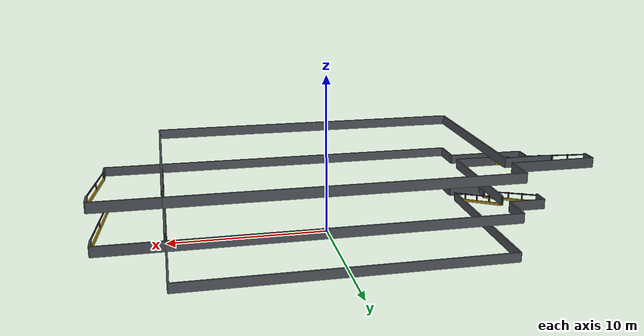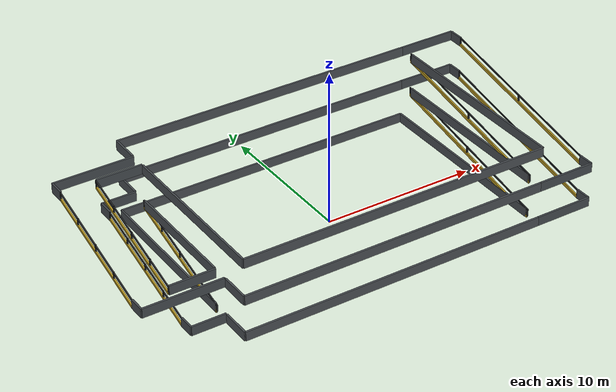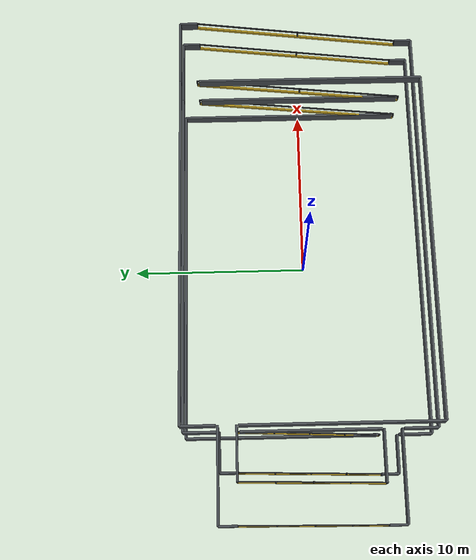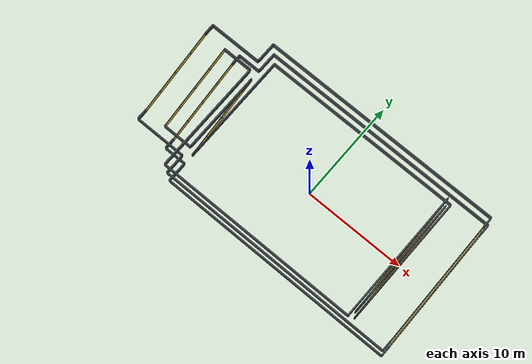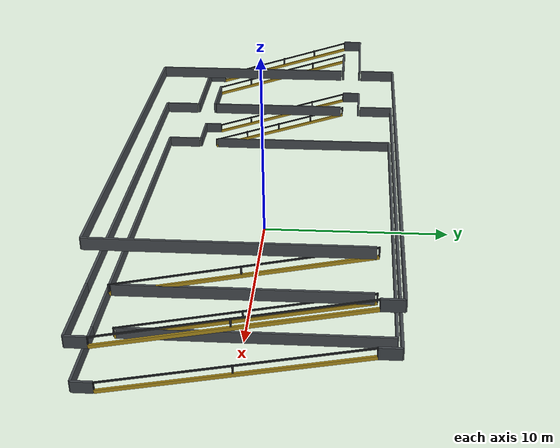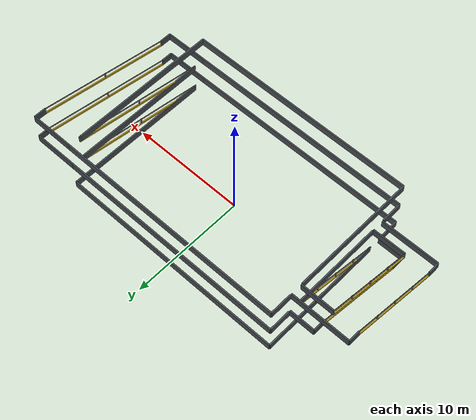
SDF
<sdf version="1.7">
 <world name="three_level_parking_garage">
  <model name="three_level_parking_structure">
   <static>true</static>
   <link name="safety_guards">
    <collision name="l1_north_guard_collision">
     <pose>0 7.0 0.30 0 0 0</pose>
     <geometry><box><size>20.0 0.12 0.60</size></box></geometry>
    </collision>
    <visual name="l1_north_guard_visual">
     <pose>0 7.0 0.30 0 0 0</pose>
     <geometry><box><size>20.0 0.12 0.60</size></box></geometry>
     <material><ambient>0.22 0.24 0.26 1</ambient><diffuse>0.29 0.31 0.33 1</diffuse></material>
    </visual>
    <collision name="l1_south_guard_collision">
     <pose>0 -7.0 0.30 0 0 0</pose>
     <geometry><box><size>20.0 0.12 0.60</size></box></geometry>
    </collision>
    <visual name="l1_south_guard_visual">
     <pose>0 -7.0 0.30 0 0 0</pose>
     <geometry><box><size>20.0 0.12 0.60</size></box></geometry>
     <material><ambient>0.22 0.24 0.26 1</ambient><diffuse>0.29 0.31 0.33 1</diffuse></material>
    </visual>
    <collision name="l2_north_guard_collision">
     <pose>0 7.0 2.70 0 0 0</pose>
     <geometry><box><size>20.0 0.12 0.60</size></box></geometry>
    </collision>
    <visual name="l2_north_guard_visual">
     <pose>0 7.0 2.70 0 0 0</pose>
     <geometry><box><size>20.0 0.12 0.60</size></box></geometry>
     <material><ambient>0.22 0.24 0.26 1</ambient><diffuse>0.29 0.31 0.33 1</diffuse></material>
    </visual>
    <collision name="l2_south_guard_collision">
     <pose>0 -7.0 2.70 0 0 0</pose>
     <geometry><box><size>20.0 0.12 0.60</size></box></geometry>
    </collision>
    <visual name="l2_south_guard_visual">
     <pose>0 -7.0 2.70 0 0 0</pose>
     <geometry><box><size>20.0 0.12 0.60</size></box></geometry>
     <material><ambient>0.22 0.24 0.26 1</ambient><diffuse>0.29 0.31 0.33 1</diffuse></material>
    </visual>
    <collision name="l3_north_guard_collision">
     <pose>0 7.0 5.10 0 0 0</pose>
     <geometry><box><size>20.0 0.12 0.60</size></box></geometry>
    </collision>
    <visual name="l3_north_guard_visual">
     <pose>0 7.0 5.10 0 0 0</pose>
     <geometry><box><size>20.0 0.12 0.60</size></box></geometry>
     <material><ambient>0.22 0.24 0.26 1</ambient><diffuse>0.29 0.31 0.33 1</diffuse></material>
    </visual>
    <collision name="l3_south_guard_collision">
     <pose>0 -7.0 5.10 0 0 0</pose>
     <geometry><box><size>20.0 0.12 0.60</size></box></geometry>
    </collision>
    <visual name="l3_south_guard_visual">
     <pose>0 -7.0 5.10 0 0 0</pose>
     <geometry><box><size>20.0 0.12 0.60</size></box></geometry>
     <material><ambient>0.22 0.24 0.26 1</ambient><diffuse>0.29 0.31 0.33 1</diffuse></material>
    </visual>
    <collision name="l1_east_guard_2_collision">
     <pose>10.0 0.55 0.30 0 0 0</pose>
     <geometry><box><size>0.12 12.9 0.60</size></box></geometry>
    </collision>
    <visual name="l1_east_guard_2_visual">
     <pose>10.0 0.55 0.30 0 0 0</pose>
     <geometry><box><size>0.12 12.9 0.60</size></box></geometry>
     <material><ambient>0.22 0.24 0.26 1</ambient><diffuse>0.29 0.31 0.33 1</diffuse></material>
    </visual>
    <collision name="l1_west_guard_1_collision">
     <pose>-10.0 -6.05 0.30 0 0 0</pose>
     <geometry><box><size>0.12 1.9 0.60</size></box></geometry>
    </collision>
    <visual name="l1_west_guard_1_visual">
     <pose>-10.0 -6.05 0.30 0 0 0</pose>
     <geometry><box><size>0.12 1.9 0.60</size></box></geometry>
     <material><ambient>0.22 0.24 0.26 1</ambient><diffuse>0.29 0.31 0.33 1</diffuse></material>
    </visual>
    <collision name="l1_west_guard_2_collision">
     <pose>-10.0 1.55 0.30 0 0 0</pose>
     <geometry><box><size>0.12 10.9 0.60</size></box></geometry>
    </collision>
    <visual name="l1_west_guard_2_visual">
     <pose>-10.0 1.55 0.30 0 0 0</pose>
     <geometry><box><size>0.12 10.9 0.60</size></box></geometry>
     <material><ambient>0.22 0.24 0.26 1</ambient><diffuse>0.29 0.31 0.33 1</diffuse></material>
    </visual>
    <collision name="l2_east_guard_2_collision">
     <pose>10.0 0 2.70 0 0 0</pose>
     <geometry><box><size>0.12 11.8 0.60</size></box></geometry>
    </collision>
    <visual name="l2_east_guard_2_visual">
     <pose>10.0 0 2.70 0 0 0</pose>
     <geometry><box><size>0.12 11.8 0.60</size></box></geometry>
     <material><ambient>0.22 0.24 0.26 1</ambient><diffuse>0.29 0.31 0.33 1</diffuse></material>
    </visual>
    <collision name="l2_west_guard_1_collision">
     <pose>-10.0 -6.05 2.70 0 0 0</pose>
     <geometry><box><size>0.12 1.9 0.60</size></box></geometry>
    </collision>
    <visual name="l2_west_guard_1_visual">
     <pose>-10.0 -6.05 2.70 0 0 0</pose>
     <geometry><box><size>0.12 1.9 0.60</size></box></geometry>
     <material><ambient>0.22 0.24 0.26 1</ambient><diffuse>0.29 0.31 0.33 1</diffuse></material>
    </visual>
    <collision name="l2_west_guard_2_collision">
     <pose>-10.0 0 2.70 0 0 0</pose>
     <geometry><box><size>0.12 7.8 0.60</size></box></geometry>
    </collision>
    <visual name="l2_west_guard_2_visual">
     <pose>-10.0 0 2.70 0 0 0</pose>
     <geometry><box><size>0.12 7.8 0.60</size></box></geometry>
     <material><ambient>0.22 0.24 0.26 1</ambient><diffuse>0.29 0.31 0.33 1</diffuse></material>
    </visual>
    <collision name="l2_west_guard_3_collision">
     <pose>-10.0 6.05 2.70 0 0 0</pose>
     <geometry><box><size>0.12 1.9 0.60</size></box></geometry>
    </collision>
    <visual name="l2_west_guard_3_visual">
     <pose>-10.0 6.05 2.70 0 0 0</pose>
     <geometry><box><size>0.12 1.9 0.60</size></box></geometry>
     <material><ambient>0.22 0.24 0.26 1</ambient><diffuse>0.29 0.31 0.33 1</diffuse></material>
    </visual>
    <collision name="l3_east_guard_1_collision">
     <pose>10.0 -0.55 5.10 0 0 0</pose>
     <geometry><box><size>0.12 12.9 0.60</size></box></geometry>
    </collision>
    <visual name="l3_east_guard_1_visual">
     <pose>10.0 -0.55 5.10 0 0 0</pose>
     <geometry><box><size>0.12 12.9 0.60</size></box></geometry>
     <material><ambient>0.22 0.24 0.26 1</ambient><diffuse>0.29 0.31 0.33 1</diffuse></material>
    </visual>
    <collision name="l3_west_guard_1_collision">
     <pose>-10.0 -1.55 5.10 0 0 0</pose>
     <geometry><box><size>0.12 10.9 0.60</size></box></geometry>
    </collision>
    <visual name="l3_west_guard_1_visual">
     <pose>-10.0 -1.55 5.10 0 0 0</pose>
     <geometry><box><size>0.12 10.9 0.60</size></box></geometry>
     <material><ambient>0.22 0.24 0.26 1</ambient><diffuse>0.29 0.31 0.33 1</diffuse></material>
    </visual>
    <collision name="l3_west_guard_2_collision">
     <pose>-10.0 6.05 5.10 0 0 0</pose>
     <geometry><box><size>0.12 1.9 0.60</size></box></geometry>
    </collision>
    <visual name="l3_west_guard_2_visual">
     <pose>-10.0 6.05 5.10 0 0 0</pose>
     <geometry><box><size>0.12 1.9 0.60</size></box></geometry>
     <material><ambient>0.22 0.24 0.26 1</ambient><diffuse>0.29 0.31 0.33 1</diffuse></material>
    </visual>
    <collision name="ramp_12_inner_curb_collision">
     <pose>10 0 1.28 0 -0.197396 1.570796</pose>
     <geometry><box><size>12.237648 0.10 0.18</size></box></geometry>
    </collision>
    <visual name="ramp_12_inner_curb_visual">
     <pose>10 0 1.28 0 -0.197396 1.570796</pose>
     <geometry><box><size>12.237648 0.10 0.18</size></box></geometry>
     <material><ambient>0.52 0.43 0.09 1</ambient><diffuse>0.72 0.59 0.12 1</diffuse></material>
    </visual>
    <collision name="ramp_12_inner_rail_collision">
     <pose>10 0 1.75 0 -0.197396 1.570796</pose>
     <geometry><box><size>12.237648 0.07 0.07</size></box></geometry>
    </collision>
    <visual name="ramp_12_inner_rail_visual">
     <pose>10 0 1.75 0 -0.197396 1.570796</pose>
     <geometry><box><size>12.237648 0.07 0.07</size></box></geometry>
     <material><ambient>0.10 0.11 0.12 1</ambient><diffuse>0.16 0.17 0.18 1</diffuse></material>
    </visual>
    <collision name="ramp_12_inner_post_1_collision">
     <pose>10 -6 0.34 0 0 0</pose>
     <geometry><box><size>0.08 0.08 0.50</size></box></geometry>
    </collision>
    <visual name="ramp_12_inner_post_1_visual">
     <pose>10 -6 0.34 0 0 0</pose>
     <geometry><box><size>0.08 0.08 0.50</size></box></geometry>
     <material><ambient>0.10 0.11 0.12 1</ambient><diffuse>0.16 0.17 0.18 1</diffuse></material>
    </visual>
    <collision name="ramp_12_inner_post_2_collision">
     <pose>10 0 1.54 0 0 0</pose>
     <geometry><box><size>0.08 0.08 0.50</size></box></geometry>
    </collision>
    <visual name="ramp_12_inner_post_2_visual">
     <pose>10 0 1.54 0 0 0</pose>
     <geometry><box><size>0.08 0.08 0.50</size></box></geometry>
     <material><ambient>0.10 0.11 0.12 1</ambient><diffuse>0.16 0.17 0.18 1</diffuse></material>
    </visual>
    <collision name="ramp_12_inner_post_3_collision">
     <pose>10 6 2.74 0 0 0</pose>
     <geometry><box><size>0.08 0.08 0.50</size></box></geometry>
    </collision>
    <visual name="ramp_12_inner_post_3_visual">
     <pose>10 6 2.74 0 0 0</pose>
     <geometry><box><size>0.08 0.08 0.50</size></box></geometry>
     <material><ambient>0.10 0.11 0.12 1</ambient><diffuse>0.16 0.17 0.18 1</diffuse></material>
    </visual>
    <collision name="ramp_12_outer_curb_collision">
     <pose>13.8 0 1.28 0 -0.197396 1.570796</pose>
     <geometry><box><size>12.237648 0.10 0.18</size></box></geometry>
    </collision>
    <visual name="ramp_12_outer_curb_visual">
     <pose>13.8 0 1.28 0 -0.197396 1.570796</pose>
     <geometry><box><size>12.237648 0.10 0.18</size></box></geometry>
     <material><ambient>0.52 0.43 0.09 1</ambient><diffuse>0.72 0.59 0.12 1</diffuse></material>
    </visual>
    <collision name="ramp_12_outer_rail_collision">
     <pose>13.8 0 1.75 0 -0.197396 1.570796</pose>
     <geometry><box><size>12.237648 0.07 0.07</size></box></geometry>
    </collision>
    <visual name="ramp_12_outer_rail_visual">
     <pose>13.8 0 1.75 0 -0.197396 1.570796</pose>
     <geometry><box><size>12.237648 0.07 0.07</size></box></geometry>
     <material><ambient>0.10 0.11 0.12 1</ambient><diffuse>0.16 0.17 0.18 1</diffuse></material>
    </visual>
    <collision name="ramp_12_outer_post_1_collision">
     <pose>13.8 -6 0.34 0 0 0</pose>
     <geometry><box><size>0.08 0.08 0.50</size></box></geometry>
    </collision>
    <visual name="ramp_12_outer_post_1_visual">
     <pose>13.8 -6 0.34 0 0 0</pose>
     <geometry><box><size>0.08 0.08 0.50</size></box></geometry>
     <material><ambient>0.10 0.11 0.12 1</ambient><diffuse>0.16 0.17 0.18 1</diffuse></material>
    </visual>
    <collision name="ramp_12_outer_post_2_collision">
     <pose>13.8 0 1.54 0 0 0</pose>
     <geometry><box><size>0.08 0.08 0.50</size></box></geometry>
    </collision>
    <visual name="ramp_12_outer_post_2_visual">
     <pose>13.8 0 1.54 0 0 0</pose>
     <geometry><box><size>0.08 0.08 0.50</size></box></geometry>
     <material><ambient>0.10 0.11 0.12 1</ambient><diffuse>0.16 0.17 0.18 1</diffuse></material>
    </visual>
    <collision name="ramp_12_outer_post_3_collision">
     <pose>13.8 6 2.74 0 0 0</pose>
     <geometry><box><size>0.08 0.08 0.50</size></box></geometry>
    </collision>
    <visual name="ramp_12_outer_post_3_visual">
     <pose>13.8 6 2.74 0 0 0</pose>
     <geometry><box><size>0.08 0.08 0.50</size></box></geometry>
     <material><ambient>0.10 0.11 0.12 1</ambient><diffuse>0.16 0.17 0.18 1</diffuse></material>
    </visual>
    <collision name="ramp_23_inner_curb_collision">
     <pose>10 0 3.68 0 -0.197396 1.570796</pose>
     <geometry><box><size>12.237648 0.10 0.18</size></box></geometry>
    </collision>
    <visual name="ramp_23_inner_curb_visual">
     <pose>10 0 3.68 0 -0.197396 1.570796</pose>
     <geometry><box><size>12.237648 0.10 0.18</size></box></geometry>
     <material><ambient>0.52 0.43 0.09 1</ambient><diffuse>0.72 0.59 0.12 1</diffuse></material>
    </visual>
    <collision name="ramp_23_inner_rail_collision">
     <pose>10 0 4.15 0 -0.197396 1.570796</pose>
     <geometry><box><size>12.237648 0.07 0.07</size></box></geometry>
    </collision>
    <visual name="ramp_23_inner_rail_visual">
     <pose>10 0 4.15 0 -0.197396 1.570796</pose>
     <geometry><box><size>12.237648 0.07 0.07</size></box></geometry>
     <material><ambient>0.10 0.11 0.12 1</ambient><diffuse>0.16 0.17 0.18 1</diffuse></material>
    </visual>
    <collision name="ramp_23_inner_post_1_collision">
     <pose>10 -6 2.74 0 0 0</pose>
     <geometry><box><size>0.08 0.08 0.50</size></box></geometry>
    </collision>
    <visual name="ramp_23_inner_post_1_visual">
     <pose>10 -6 2.74 0 0 0</pose>
     <geometry><box><size>0.08 0.08 0.50</size></box></geometry>
     <material><ambient>0.10 0.11 0.12 1</ambient><diffuse>0.16 0.17 0.18 1</diffuse></material>
    </visual>
    <collision name="ramp_23_inner_post_2_collision">
     <pose>10 0 3.94 0 0 0</pose>
     <geometry><box><size>0.08 0.08 0.50</size></box></geometry>
    </collision>
    <visual name="ramp_23_inner_post_2_visual">
     <pose>10 0 3.94 0 0 0</pose>
     <geometry><box><size>0.08 0.08 0.50</size></box></geometry>
     <material><ambient>0.10 0.11 0.12 1</ambient><diffuse>0.16 0.17 0.18 1</diffuse></material>
    </visual>
    <collision name="ramp_23_inner_post_3_collision">
     <pose>10 6 5.14 0 0 0</pose>
     <geometry><box><size>0.08 0.08 0.50</size></box></geometry>
    </collision>
    <visual name="ramp_23_inner_post_3_visual">
     <pose>10 6 5.14 0 0 0</pose>
     <geometry><box><size>0.08 0.08 0.50</size></box></geometry>
     <material><ambient>0.10 0.11 0.12 1</ambient><diffuse>0.16 0.17 0.18 1</diffuse></material>
    </visual>
    <collision name="ramp_23_outer_curb_collision">
     <pose>13.8 0 3.68 0 -0.197396 1.570796</pose>
     <geometry><box><size>12.237648 0.10 0.18</size></box></geometry>
    </collision>
    <visual name="ramp_23_outer_curb_visual">
     <pose>13.8 0 3.68 0 -0.197396 1.570796</pose>
     <geometry><box><size>12.237648 0.10 0.18</size></box></geometry>
     <material><ambient>0.52 0.43 0.09 1</ambient><diffuse>0.72 0.59 0.12 1</diffuse></material>
    </visual>
    <collision name="ramp_23_outer_rail_collision">
     <pose>13.8 0 4.15 0 -0.197396 1.570796</pose>
     <geometry><box><size>12.237648 0.07 0.07</size></box></geometry>
    </collision>
    <visual name="ramp_23_outer_rail_visual">
     <pose>13.8 0 4.15 0 -0.197396 1.570796</pose>
     <geometry><box><size>12.237648 0.07 0.07</size></box></geometry>
     <material><ambient>0.10 0.11 0.12 1</ambient><diffuse>0.16 0.17 0.18 1</diffuse></material>
    </visual>
    <collision name="ramp_23_outer_post_1_collision">
     <pose>13.8 -6 2.74 0 0 0</pose>
     <geometry><box><size>0.08 0.08 0.50</size></box></geometry>
    </collision>
    <visual name="ramp_23_outer_post_1_visual">
     <pose>13.8 -6 2.74 0 0 0</pose>
     <geometry><box><size>0.08 0.08 0.50</size></box></geometry>
     <material><ambient>0.10 0.11 0.12 1</ambient><diffuse>0.16 0.17 0.18 1</diffuse></material>
    </visual>
    <collision name="ramp_23_outer_post_2_collision">
     <pose>13.8 0 3.94 0 0 0</pose>
     <geometry><box><size>0.08 0.08 0.50</size></box></geometry>
    </collision>
    <visual name="ramp_23_outer_post_2_visual">
     <pose>13.8 0 3.94 0 0 0</pose>
     <geometry><box><size>0.08 0.08 0.50</size></box></geometry>
     <material><ambient>0.10 0.11 0.12 1</ambient><diffuse>0.16 0.17 0.18 1</diffuse></material>
    </visual>
    <collision name="ramp_23_outer_post_3_collision">
     <pose>13.8 6 5.14 0 0 0</pose>
     <geometry><box><size>0.08 0.08 0.50</size></box></geometry>
    </collision>
    <visual name="ramp_23_outer_post_3_visual">
     <pose>13.8 6 5.14 0 0 0</pose>
     <geometry><box><size>0.08 0.08 0.50</size></box></geometry>
     <material><ambient>0.10 0.11 0.12 1</ambient><diffuse>0.16 0.17 0.18 1</diffuse></material>
    </visual>
    <collision name="stair_12_outer_curb_collision">
     <pose>-12.2 0 1.27 0 -0.291457 1.570796</pose>
     <geometry><box><size>8.352245 0.10 0.16</size></box></geometry>
    </collision>
    <visual name="stair_12_outer_curb_visual">
     <pose>-12.2 0 1.27 0 -0.291457 1.570796</pose>
     <geometry><box><size>8.352245 0.10 0.16</size></box></geometry>
     <material><ambient>0.52 0.43 0.09 1</ambient><diffuse>0.72 0.59 0.12 1</diffuse></material>
    </visual>
    <collision name="stair_12_outer_rail_collision">
     <pose>-12.2 0 1.70 0 -0.291457 1.570796</pose>
     <geometry><box><size>8.352245 0.07 0.07</size></box></geometry>
    </collision>
    <visual name="stair_12_outer_rail_visual">
     <pose>-12.2 0 1.70 0 -0.291457 1.570796</pose>
     <geometry><box><size>8.352245 0.07 0.07</size></box></geometry>
     <material><ambient>0.10 0.11 0.12 1</ambient><diffuse>0.16 0.17 0.18 1</diffuse></material>
    </visual>
    <collision name="stair_12_outer_post_1_collision">
     <pose>-12.2 -4 0.32 0 0 0</pose>
     <geometry><box><size>0.08 0.08 0.48</size></box></geometry>
    </collision>
    <visual name="stair_12_outer_post_1_visual">
     <pose>-12.2 -4 0.32 0 0 0</pose>
     <geometry><box><size>0.08 0.08 0.48</size></box></geometry>
     <material><ambient>0.10 0.11 0.12 1</ambient><diffuse>0.16 0.17 0.18 1</diffuse></material>
    </visual>
    <collision name="stair_12_outer_post_2_collision">
     <pose>-12.2 -2 0.92 0 0 0</pose>
     <geometry><box><size>0.08 0.08 0.48</size></box></geometry>
    </collision>
    <visual name="stair_12_outer_post_2_visual">
     <pose>-12.2 -2 0.92 0 0 0</pose>
     <geometry><box><size>0.08 0.08 0.48</size></box></geometry>
     <material><ambient>0.10 0.11 0.12 1</ambient><diffuse>0.16 0.17 0.18 1</diffuse></material>
    </visual>
    <collision name="stair_12_outer_post_3_collision">
     <pose>-12.2 0 1.52 0 0 0</pose>
     <geometry><box><size>0.08 0.08 0.48</size></box></geometry>
    </collision>
    <visual name="stair_12_outer_post_3_visual">
     <pose>-12.2 0 1.52 0 0 0</pose>
     <geometry><box><size>0.08 0.08 0.48</size></box></geometry>
     <material><ambient>0.10 0.11 0.12 1</ambient><diffuse>0.16 0.17 0.18 1</diffuse></material>
    </visual>
    <collision name="stair_12_outer_post_4_collision">
     <pose>-12.2 2 2.12 0 0 0</pose>
     <geometry><box><size>0.08 0.08 0.48</size></box></geometry>
    </collision>
    <visual name="stair_12_outer_post_4_visual">
     <pose>-12.2 2 2.12 0 0 0</pose>
     <geometry><box><size>0.08 0.08 0.48</size></box></geometry>
     <material><ambient>0.10 0.11 0.12 1</ambient><diffuse>0.16 0.17 0.18 1</diffuse></material>
    </visual>
    <collision name="stair_12_outer_post_5_collision">
     <pose>-12.2 4 2.72 0 0 0</pose>
     <geometry><box><size>0.08 0.08 0.48</size></box></geometry>
    </collision>
    <visual name="stair_12_outer_post_5_visual">
     <pose>-12.2 4 2.72 0 0 0</pose>
     <geometry><box><size>0.08 0.08 0.48</size></box></geometry>
     <material><ambient>0.10 0.11 0.12 1</ambient><diffuse>0.16 0.17 0.18 1</diffuse></material>
    </visual>
    <collision name="stair_12_inner_curb_collision">
     <pose>-10 0 1.27 0 -0.291457 1.570796</pose>
     <geometry><box><size>8.352245 0.10 0.16</size></box></geometry>
    </collision>
    <visual name="stair_12_inner_curb_visual">
     <pose>-10 0 1.27 0 -0.291457 1.570796</pose>
     <geometry><box><size>8.352245 0.10 0.16</size></box></geometry>
     <material><ambient>0.52 0.43 0.09 1</ambient><diffuse>0.72 0.59 0.12 1</diffuse></material>
    </visual>
    <collision name="stair_12_inner_rail_collision">
     <pose>-10 0 1.70 0 -0.291457 1.570796</pose>
     <geometry><box><size>8.352245 0.07 0.07</size></box></geometry>
    </collision>
    <visual name="stair_12_inner_rail_visual">
     <pose>-10 0 1.70 0 -0.291457 1.570796</pose>
     <geometry><box><size>8.352245 0.07 0.07</size></box></geometry>
     <material><ambient>0.10 0.11 0.12 1</ambient><diffuse>0.16 0.17 0.18 1</diffuse></material>
    </visual>
    <collision name="stair_12_inner_post_1_collision">
     <pose>-10 -4 0.32 0 0 0</pose>
     <geometry><box><size>0.08 0.08 0.48</size></box></geometry>
    </collision>
    <visual name="stair_12_inner_post_1_visual">
     <pose>-10 -4 0.32 0 0 0</pose>
     <geometry><box><size>0.08 0.08 0.48</size></box></geometry>
     <material><ambient>0.10 0.11 0.12 1</ambient><diffuse>0.16 0.17 0.18 1</diffuse></material>
    </visual>
    <collision name="stair_12_inner_post_2_collision">
     <pose>-10 -2 0.92 0 0 0</pose>
     <geometry><box><size>0.08 0.08 0.48</size></box></geometry>
    </collision>
    <visual name="stair_12_inner_post_2_visual">
     <pose>-10 -2 0.92 0 0 0</pose>
     <geometry><box><size>0.08 0.08 0.48</size></box></geometry>
     <material><ambient>0.10 0.11 0.12 1</ambient><diffuse>0.16 0.17 0.18 1</diffuse></material>
    </visual>
    <collision name="stair_12_inner_post_3_collision">
     <pose>-10 0 1.52 0 0 0</pose>
     <geometry><box><size>0.08 0.08 0.48</size></box></geometry>
    </collision>
    <visual name="stair_12_inner_post_3_visual">
     <pose>-10 0 1.52 0 0 0</pose>
     <geometry><box><size>0.08 0.08 0.48</size></box></geometry>
     <material><ambient>0.10 0.11 0.12 1</ambient><diffuse>0.16 0.17 0.18 1</diffuse></material>
    </visual>
    <collision name="stair_12_inner_post_4_collision">
     <pose>-10 2 2.12 0 0 0</pose>
     <geometry><box><size>0.08 0.08 0.48</size></box></geometry>
    </collision>
    <visual name="stair_12_inner_post_4_visual">
     <pose>-10 2 2.12 0 0 0</pose>
     <geometry><box><size>0.08 0.08 0.48</size></box></geometry>
     <material><ambient>0.10 0.11 0.12 1</ambient><diffuse>0.16 0.17 0.18 1</diffuse></material>
    </visual>
    <collision name="stair_12_inner_post_5_collision">
     <pose>-10 4 2.72 0 0 0</pose>
     <geometry><box><size>0.08 0.08 0.48</size></box></geometry>
    </collision>
    <visual name="stair_12_inner_post_5_visual">
     <pose>-10 4 2.72 0 0 0</pose>
     <geometry><box><size>0.08 0.08 0.48</size></box></geometry>
     <material><ambient>0.10 0.11 0.12 1</ambient><diffuse>0.16 0.17 0.18 1</diffuse></material>
    </visual>
    <collision name="stair_23_outer_curb_collision">
     <pose>-15.1 0 3.67 0 -0.291457 1.570796</pose>
     <geometry><box><size>8.352245 0.10 0.16</size></box></geometry>
    </collision>
    <visual name="stair_23_outer_curb_visual">
     <pose>-15.1 0 3.67 0 -0.291457 1.570796</pose>
     <geometry><box><size>8.352245 0.10 0.16</size></box></geometry>
     <material><ambient>0.52 0.43 0.09 1</ambient><diffuse>0.72 0.59 0.12 1</diffuse></material>
    </visual>
    <collision name="stair_23_outer_rail_collision">
     <pose>-15.1 0 4.10 0 -0.291457 1.570796</pose>
     <geometry><box><size>8.352245 0.07 0.07</size></box></geometry>
    </collision>
    <visual name="stair_23_outer_rail_visual">
     <pose>-15.1 0 4.10 0 -0.291457 1.570796</pose>
     <geometry><box><size>8.352245 0.07 0.07</size></box></geometry>
     <material><ambient>0.10 0.11 0.12 1</ambient><diffuse>0.16 0.17 0.18 1</diffuse></material>
    </visual>
    <collision name="stair_23_outer_post_1_collision">
     <pose>-15.1 -4 2.72 0 0 0</pose>
     <geometry><box><size>0.08 0.08 0.48</size></box></geometry>
    </collision>
    <visual name="stair_23_outer_post_1_visual">
     <pose>-15.1 -4 2.72 0 0 0</pose>
     <geometry><box><size>0.08 0.08 0.48</size></box></geometry>
     <material><ambient>0.10 0.11 0.12 1</ambient><diffuse>0.16 0.17 0.18 1</diffuse></material>
    </visual>
    <collision name="stair_23_outer_post_2_collision">
     <pose>-15.1 -2 3.32 0 0 0</pose>
     <geometry><box><size>0.08 0.08 0.48</size></box></geometry>
    </collision>
    <visual name="stair_23_outer_post_2_visual">
     <pose>-15.1 -2 3.32 0 0 0</pose>
     <geometry><box><size>0.08 0.08 0.48</size></box></geometry>
     <material><ambient>0.10 0.11 0.12 1</ambient><diffuse>0.16 0.17 0.18 1</diffuse></material>
    </visual>
    <collision name="stair_23_outer_post_3_collision">
     <pose>-15.1 0 3.92 0 0 0</pose>
     <geometry><box><size>0.08 0.08 0.48</size></box></geometry>
    </collision>
    <visual name="stair_23_outer_post_3_visual">
     <pose>-15.1 0 3.92 0 0 0</pose>
     <geometry><box><size>0.08 0.08 0.48</size></box></geometry>
     <material><ambient>0.10 0.11 0.12 1</ambient><diffuse>0.16 0.17 0.18 1</diffuse></material>
    </visual>
    <collision name="stair_23_outer_post_4_collision">
     <pose>-15.1 2 4.52 0 0 0</pose>
     <geometry><box><size>0.08 0.08 0.48</size></box></geometry>
    </collision>
    <visual name="stair_23_outer_post_4_visual">
     <pose>-15.1 2 4.52 0 0 0</pose>
     <geometry><box><size>0.08 0.08 0.48</size></box></geometry>
     <material><ambient>0.10 0.11 0.12 1</ambient><diffuse>0.16 0.17 0.18 1</diffuse></material>
    </visual>
    <collision name="stair_23_outer_post_5_collision">
     <pose>-15.1 4 5.12 0 0 0</pose>
     <geometry><box><size>0.08 0.08 0.48</size></box></geometry>
    </collision>
    <visual name="stair_23_outer_post_5_visual">
     <pose>-15.1 4 5.12 0 0 0</pose>
     <geometry><box><size>0.08 0.08 0.48</size></box></geometry>
     <material><ambient>0.10 0.11 0.12 1</ambient><diffuse>0.16 0.17 0.18 1</diffuse></material>
    </visual>
    <collision name="stair_23_inner_curb_collision">
     <pose>-12.9 0 3.67 0 -0.291457 1.570796</pose>
     <geometry><box><size>8.352245 0.10 0.16</size></box></geometry>
    </collision>
    <visual name="stair_23_inner_curb_visual">
     <pose>-12.9 0 3.67 0 -0.291457 1.570796</pose>
     <geometry><box><size>8.352245 0.10 0.16</size></box></geometry>
     <material><ambient>0.52 0.43 0.09 1</ambient><diffuse>0.72 0.59 0.12 1</diffuse></material>
    </visual>
    <collision name="stair_23_inner_rail_collision">
     <pose>-12.9 0 4.10 0 -0.291457 1.570796</pose>
     <geometry><box><size>8.352245 0.07 0.07</size></box></geometry>
    </collision>
    <visual name="stair_23_inner_rail_visual">
     <pose>-12.9 0 4.10 0 -0.291457 1.570796</pose>
     <geometry><box><size>8.352245 0.07 0.07</size></box></geometry>
     <material><ambient>0.10 0.11 0.12 1</ambient><diffuse>0.16 0.17 0.18 1</diffuse></material>
    </visual>
    <collision name="stair_23_inner_post_1_collision">
     <pose>-12.9 -4 2.72 0 0 0</pose>
     <geometry><box><size>0.08 0.08 0.48</size></box></geometry>
    </collision>
    <visual name="stair_23_inner_post_1_visual">
     <pose>-12.9 -4 2.72 0 0 0</pose>
     <geometry><box><size>0.08 0.08 0.48</size></box></geometry>
     <material><ambient>0.10 0.11 0.12 1</ambient><diffuse>0.16 0.17 0.18 1</diffuse></material>
    </visual>
    <collision name="stair_23_inner_post_2_collision">
     <pose>-12.9 -2 3.32 0 0 0</pose>
     <geometry><box><size>0.08 0.08 0.48</size></box></geometry>
    </collision>
    <visual name="stair_23_inner_post_2_visual">
     <pose>-12.9 -2 3.32 0 0 0</pose>
     <geometry><box><size>0.08 0.08 0.48</size></box></geometry>
     <material><ambient>0.10 0.11 0.12 1</ambient><diffuse>0.16 0.17 0.18 1</diffuse></material>
    </visual>
    <collision name="stair_23_inner_post_3_collision">
     <pose>-12.9 0 3.92 0 0 0</pose>
     <geometry><box><size>0.08 0.08 0.48</size></box></geometry>
    </collision>
    <visual name="stair_23_inner_post_3_visual">
     <pose>-12.9 0 3.92 0 0 0</pose>
     <geometry><box><size>0.08 0.08 0.48</size></box></geometry>
     <material><ambient>0.10 0.11 0.12 1</ambient><diffuse>0.16 0.17 0.18 1</diffuse></material>
    </visual>
    <collision name="stair_23_inner_post_4_collision">
     <pose>-12.9 2 4.52 0 0 0</pose>
     <geometry><box><size>0.08 0.08 0.48</size></box></geometry>
    </collision>
    <visual name="stair_23_inner_post_4_visual">
     <pose>-12.9 2 4.52 0 0 0</pose>
     <geometry><box><size>0.08 0.08 0.48</size></box></geometry>
     <material><ambient>0.10 0.11 0.12 1</ambient><diffuse>0.16 0.17 0.18 1</diffuse></material>
    </visual>
    <collision name="stair_23_inner_post_5_collision">
     <pose>-12.9 4 5.12 0 0 0</pose>
     <geometry><box><size>0.08 0.08 0.48</size></box></geometry>
    </collision>
    <visual name="stair_23_inner_post_5_visual">
     <pose>-12.9 4 5.12 0 0 0</pose>
     <geometry><box><size>0.08 0.08 0.48</size></box></geometry>
     <material><ambient>0.10 0.11 0.12 1</ambient><diffuse>0.16 0.17 0.18 1</diffuse></material>
    </visual>
    <collision name="ramp_12_lower_landing_south_guard_collision">
     <pose>11.9 -7.0 0.30 0 0 0</pose>
     <geometry><box><size>3.8 0.12 0.60</size></box></geometry>
    </collision>
    <visual name="ramp_12_lower_landing_south_guard_visual">
     <pose>11.9 -7.0 0.30 0 0 0</pose>
     <geometry><box><size>3.8 0.12 0.60</size></box></geometry>
     <material><ambient>0.19 0.21 0.23 1</ambient><diffuse>0.27 0.29 0.31 1</diffuse></material>
    </visual>
    <collision name="ramp_12_lower_landing_outer_guard_collision">
     <pose>13.8 -6.5 0.30 0 0 0</pose>
     <geometry><box><size>0.12 1.0 0.60</size></box></geometry>
    </collision>
    <visual name="ramp_12_lower_landing_outer_guard_visual">
     <pose>13.8 -6.5 0.30 0 0 0</pose>
     <geometry><box><size>0.12 1.0 0.60</size></box></geometry>
     <material><ambient>0.19 0.21 0.23 1</ambient><diffuse>0.27 0.29 0.31 1</diffuse></material>
    </visual>
    <collision name="ramp_12_upper_landing_north_guard_collision">
     <pose>11.9 7.0 2.70 0 0 0</pose>
     <geometry><box><size>3.8 0.12 0.60</size></box></geometry>
    </collision>
    <visual name="ramp_12_upper_landing_north_guard_visual">
     <pose>11.9 7.0 2.70 0 0 0</pose>
     <geometry><box><size>3.8 0.12 0.60</size></box></geometry>
     <material><ambient>0.19 0.21 0.23 1</ambient><diffuse>0.27 0.29 0.31 1</diffuse></material>
    </visual>
    <collision name="ramp_12_upper_landing_outer_guard_collision">
     <pose>13.8 6.5 2.70 0 0 0</pose>
     <geometry><box><size>0.12 1.0 0.60</size></box></geometry>
    </collision>
    <visual name="ramp_12_upper_landing_outer_guard_visual">
     <pose>13.8 6.5 2.70 0 0 0</pose>
     <geometry><box><size>0.12 1.0 0.60</size></box></geometry>
     <material><ambient>0.19 0.21 0.23 1</ambient><diffuse>0.27 0.29 0.31 1</diffuse></material>
    </visual>
    <collision name="stair_12_lower_landing_south_guard_collision">
     <pose>-11.1 -5.0 0.30 0 0 0</pose>
     <geometry><box><size>2.2 0.12 0.60</size></box></geometry>
    </collision>
    <visual name="stair_12_lower_landing_south_guard_visual">
     <pose>-11.1 -5.0 0.30 0 0 0</pose>
     <geometry><box><size>2.2 0.12 0.60</size></box></geometry>
     <material><ambient>0.19 0.21 0.23 1</ambient><diffuse>0.27 0.29 0.31 1</diffuse></material>
    </visual>
    <collision name="stair_12_lower_landing_outer_guard_collision">
     <pose>-12.2 -4.5 0.30 0 0 0</pose>
     <geometry><box><size>0.12 1.0 0.60</size></box></geometry>
    </collision>
    <visual name="stair_12_lower_landing_outer_guard_visual">
     <pose>-12.2 -4.5 0.30 0 0 0</pose>
     <geometry><box><size>0.12 1.0 0.60</size></box></geometry>
     <material><ambient>0.19 0.21 0.23 1</ambient><diffuse>0.27 0.29 0.31 1</diffuse></material>
    </visual>
    <collision name="stair_12_upper_landing_north_guard_collision">
     <pose>-11.1 5.0 2.70 0 0 0</pose>
     <geometry><box><size>2.2 0.12 0.60</size></box></geometry>
    </collision>
    <visual name="stair_12_upper_landing_north_guard_visual">
     <pose>-11.1 5.0 2.70 0 0 0</pose>
     <geometry><box><size>2.2 0.12 0.60</size></box></geometry>
     <material><ambient>0.19 0.21 0.23 1</ambient><diffuse>0.27 0.29 0.31 1</diffuse></material>
    </visual>
    <collision name="stair_12_upper_landing_outer_guard_collision">
     <pose>-12.2 4.5 2.70 0 0 0</pose>
     <geometry><box><size>0.12 1.0 0.60</size></box></geometry>
    </collision>
    <visual name="stair_12_upper_landing_outer_guard_visual">
     <pose>-12.2 4.5 2.70 0 0 0</pose>
     <geometry><box><size>0.12 1.0 0.60</size></box></geometry>
     <material><ambient>0.19 0.21 0.23 1</ambient><diffuse>0.27 0.29 0.31 1</diffuse></material>
    </visual>
    <collision name="ramp_23_lower_landing_south_guard_collision">
     <pose>11.9 -7.0 2.70 0 0 0</pose>
     <geometry><box><size>3.8 0.12 0.60</size></box></geometry>
    </collision>
    <visual name="ramp_23_lower_landing_south_guard_visual">
     <pose>11.9 -7.0 2.70 0 0 0</pose>
     <geometry><box><size>3.8 0.12 0.60</size></box></geometry>
     <material><ambient>0.19 0.21 0.23 1</ambient><diffuse>0.27 0.29 0.31 1</diffuse></material>
    </visual>
    <collision name="ramp_23_lower_landing_outer_guard_collision">
     <pose>13.8 -6.5 2.70 0 0 0</pose>
     <geometry><box><size>0.12 1.0 0.60</size></box></geometry>
    </collision>
    <visual name="ramp_23_lower_landing_outer_guard_visual">
     <pose>13.8 -6.5 2.70 0 0 0</pose>
     <geometry><box><size>0.12 1.0 0.60</size></box></geometry>
     <material><ambient>0.19 0.21 0.23 1</ambient><diffuse>0.27 0.29 0.31 1</diffuse></material>
    </visual>
    <collision name="ramp_23_upper_landing_north_guard_collision">
     <pose>11.9 7.0 5.10 0 0 0</pose>
     <geometry><box><size>3.8 0.12 0.60</size></box></geometry>
    </collision>
    <visual name="ramp_23_upper_landing_north_guard_visual">
     <pose>11.9 7.0 5.10 0 0 0</pose>
     <geometry><box><size>3.8 0.12 0.60</size></box></geometry>
     <material><ambient>0.19 0.21 0.23 1</ambient><diffuse>0.27 0.29 0.31 1</diffuse></material>
    </visual>
    <collision name="ramp_23_upper_landing_outer_guard_collision">
     <pose>13.8 6.5 5.10 0 0 0</pose>
     <geometry><box><size>0.12 1.0 0.60</size></box></geometry>
    </collision>
    <visual name="ramp_23_upper_landing_outer_guard_visual">
     <pose>13.8 6.5 5.10 0 0 0</pose>
     <geometry><box><size>0.12 1.0 0.60</size></box></geometry>
     <material><ambient>0.19 0.21 0.23 1</ambient><diffuse>0.27 0.29 0.31 1</diffuse></material>
    </visual>
    <collision name="stair_23_lower_landing_south_guard_collision">
     <pose>-12.55 -5.0 2.70 0 0 0</pose>
     <geometry><box><size>5.1 0.12 0.60</size></box></geometry>
    </collision>
    <visual name="stair_23_lower_landing_south_guard_visual">
     <pose>-12.55 -5.0 2.70 0 0 0</pose>
     <geometry><box><size>5.1 0.12 0.60</size></box></geometry>
     <material><ambient>0.19 0.21 0.23 1</ambient><diffuse>0.27 0.29 0.31 1</diffuse></material>
    </visual>
    <collision name="stair_23_lower_landing_outer_guard_collision">
     <pose>-15.1 -4.5 2.70 0 0 0</pose>
     <geometry><box><size>0.12 1.0 0.60</size></box></geometry>
    </collision>
    <visual name="stair_23_lower_landing_outer_guard_visual">
     <pose>-15.1 -4.5 2.70 0 0 0</pose>
     <geometry><box><size>0.12 1.0 0.60</size></box></geometry>
     <material><ambient>0.19 0.21 0.23 1</ambient><diffuse>0.27 0.29 0.31 1</diffuse></material>
    </visual>
    <collision name="stair_23_lower_landing_return_guard_collision">
     <pose>-11.45 -4.0 2.70 0 0 0</pose>
     <geometry><box><size>2.9 0.12 0.60</size></box></geometry>
    </collision>
    <visual name="stair_23_lower_landing_return_guard_visual">
     <pose>-11.45 -4.0 2.70 0 0 0</pose>
     <geometry><box><size>2.9 0.12 0.60</size></box></geometry>
     <material><ambient>0.19 0.21 0.23 1</ambient><diffuse>0.27 0.29 0.31 1</diffuse></material>
    </visual>
    <collision name="stair_23_upper_landing_north_guard_collision">
     <pose>-12.55 5.0 5.10 0 0 0</pose>
     <geometry><box><size>5.1 0.12 0.60</size></box></geometry>
    </collision>
    <visual name="stair_23_upper_landing_north_guard_visual">
     <pose>-12.55 5.0 5.10 0 0 0</pose>
     <geometry><box><size>5.1 0.12 0.60</size></box></geometry>
     <material><ambient>0.19 0.21 0.23 1</ambient><diffuse>0.27 0.29 0.31 1</diffuse></material>
    </visual>
    <collision name="stair_23_upper_landing_outer_guard_collision">
     <pose>-15.1 4.5 5.10 0 0 0</pose>
     <geometry><box><size>0.12 1.0 0.60</size></box></geometry>
    </collision>
    <visual name="stair_23_upper_landing_outer_guard_visual">
     <pose>-15.1 4.5 5.10 0 0 0</pose>
     <geometry><box><size>0.12 1.0 0.60</size></box></geometry>
     <material><ambient>0.19 0.21 0.23 1</ambient><diffuse>0.27 0.29 0.31 1</diffuse></material>
    </visual>
    <collision name="stair_23_upper_landing_return_guard_collision">
     <pose>-11.45 4.0 5.10 0 0 0</pose>
     <geometry><box><size>2.9 0.12 0.60</size></box></geometry>
    </collision>
    <visual name="stair_23_upper_landing_return_guard_visual">
     <pose>-11.45 4.0 5.10 0 0 0</pose>
     <geometry><box><size>2.9 0.12 0.60</size></box></geometry>
     <material><ambient>0.19 0.21 0.23 1</ambient><diffuse>0.27 0.29 0.31 1</diffuse></material>
    </visual>
   </link>
  </model>
 </world>
</sdf>
